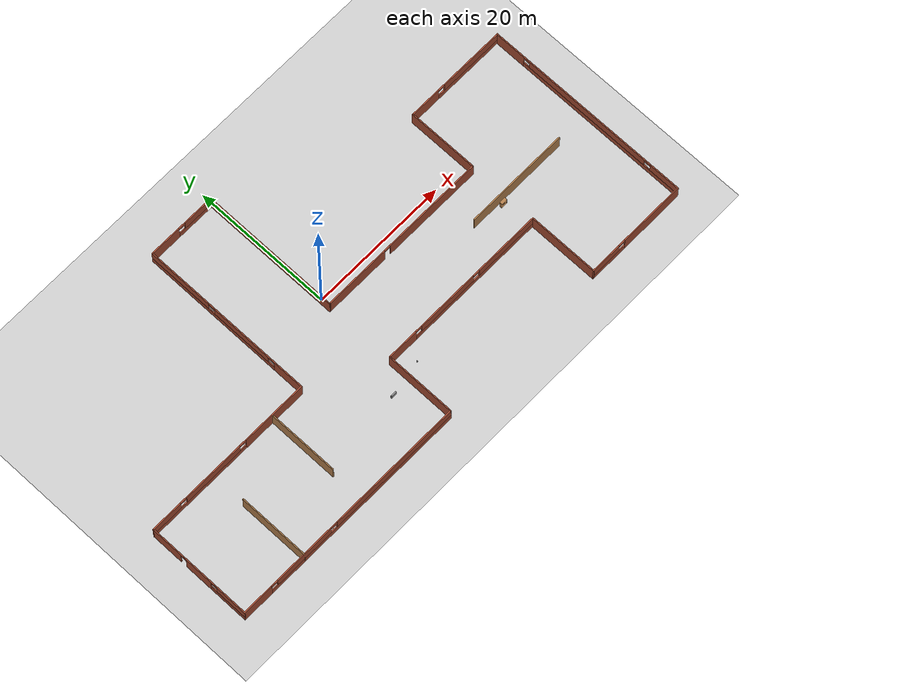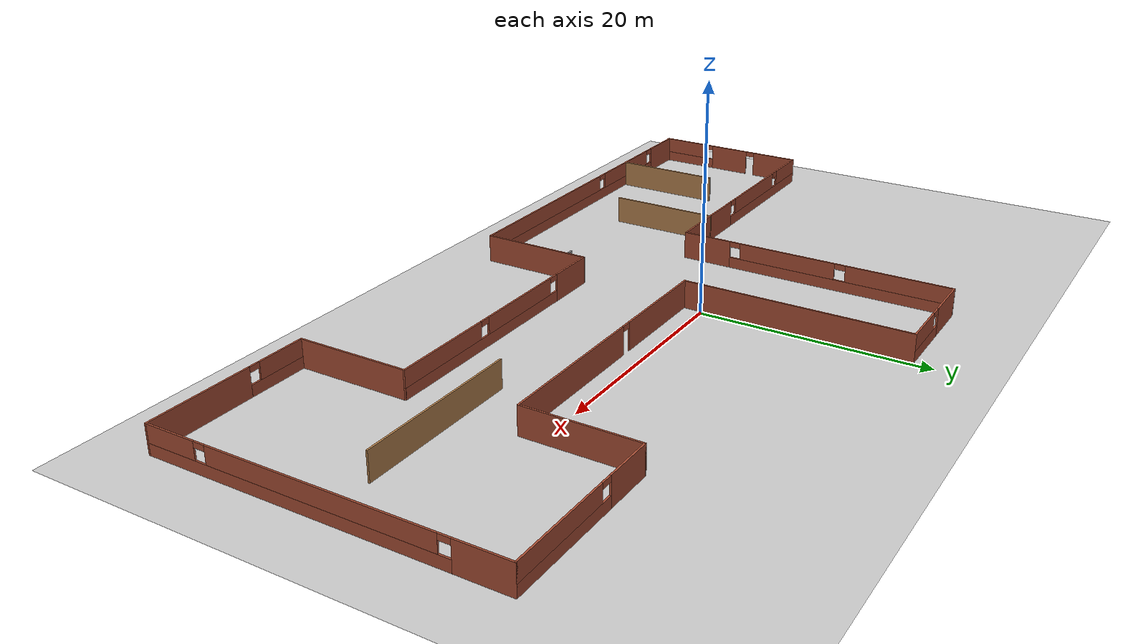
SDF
<sdf version="1.6">
 <world name="default">
  <model name="ground_plane">
   <static>1</static>
   <link name="link">
    <collision name="collision">
     <geometry><plane><normal>0 0 1</normal><size>100 100</size></plane></geometry>
     <surface>
      <contact><collide_bitmask>65535</collide_bitmask></contact>
      <friction><ode><mu>100</mu><mu2>50</mu2></ode></friction>
     </surface>
    </collision>
    <visual name="visual">
     <cast_shadows>0</cast_shadows>
     <geometry><plane><normal>0 0 1</normal><size>100 100</size></plane></geometry>
     <material>
      <script><uri>file://media/materials/scripts/gazebo.material</uri><name>Gazebo/Grey</name></script>
     </material>
    </visual>
   </link>
  </model>
  <model name="Building">
   <pose>2.1549 -1.76376 0 0 -0 0</pose>
   <link name="Wall_0">
    <pose>-12.5 7.5 0 0 -0 1.5708</pose>
    <visual name="Wall_0_Visual_0">
     <pose>-10.2875 0 1.25 0 -0 0</pose>
     <geometry><box><size>4.575 0.15 2.5</size></box></geometry>
     <material>
      <script><uri>file://media/materials/scripts/gazebo.material</uri><name>Gazebo/Bricks</name></script>
      <ambient>1 1 1 1</ambient>
     </material>
     <meta><layer>0</layer></meta>
    </visual>
    <collision name="Wall_0_Collision_0">
     <geometry><box><size>4.575 0.15 2.5</size></box></geometry>
     <pose>-10.2875 0 1.25 0 -0 0</pose>
    </collision>
    <visual name="Wall_0_Visual_1">
     <pose>2.2875 0 0.5 0 -0 0</pose>
     <geometry><box><size>20.575 0.15 1</size></box></geometry>
     <material>
      <script><uri>file://media/materials/scripts/gazebo.material</uri><name>Gazebo/Bricks</name></script>
      <ambient>1 1 1 1</ambient>
     </material>
     <meta><layer>0</layer></meta>
    </visual>
    <collision name="Wall_0_Collision_1">
     <geometry><box><size>20.575 0.15 1</size></box></geometry>
     <pose>2.2875 0 0.5 0 -0 0</pose>
    </collision>
    <visual name="Wall_0_Visual_2">
     <pose>-2.5 0 1.75 0 -0 0</pose>
     <geometry><box><size>9 0.15 1.5</size></box></geometry>
     <material>
      <script><uri>file://media/materials/scripts/gazebo.material</uri><name>Gazebo/Bricks</name></script>
      <ambient>1 1 1 1</ambient>
     </material>
     <meta><layer>0</layer></meta>
    </visual>
    <collision name="Wall_0_Collision_2">
     <geometry><box><size>9 0.15 1.5</size></box></geometry>
     <pose>-2.5 0 1.75 0 -0 0</pose>
    </collision>
    <visual name="Wall_0_Visual_3">
     <pose>7.7875 0 1.75 0 -0 0</pose>
     <geometry><box><size>9.575 0.15 1.5</size></box></geometry>
     <material>
      <script><uri>file://media/materials/scripts/gazebo.material</uri><name>Gazebo/Bricks</name></script>
      <ambient>1 1 1 1</ambient>
     </material>
     <meta><layer>0</layer></meta>
    </visual>
    <collision name="Wall_0_Collision_3">
     <geometry><box><size>9.575 0.15 1.5</size></box></geometry>
     <pose>7.7875 0 1.75 0 -0 0</pose>
    </collision>
    <visual name="Wall_0_Visual_4">
     <pose>-7.5 0 2.25 0 -0 0</pose>
     <geometry><box><size>1 0.15 0.5</size></box></geometry>
     <material>
      <script><uri>file://media/materials/scripts/gazebo.material</uri><name>Gazebo/Bricks</name></script>
      <ambient>1 1 1 1</ambient>
     </material>
     <meta><layer>0</layer></meta>
    </visual>
    <collision name="Wall_0_Collision_4">
     <geometry><box><size>1 0.15 0.5</size></box></geometry>
     <pose>-7.5 0 2.25 0 -0 0</pose>
    </collision>
    <visual name="Wall_0_Visual_5">
     <pose>2.5 0 2.25 0 -0 0</pose>
     <geometry><box><size>1 0.15 0.5</size></box></geometry>
     <material>
      <script><uri>file://media/materials/scripts/gazebo.material</uri><name>Gazebo/Bricks</name></script>
      <ambient>1 1 1 1</ambient>
     </material>
     <meta><layer>0</layer></meta>
    </visual>
    <collision name="Wall_0_Collision_5">
     <geometry><box><size>1 0.15 0.5</size></box></geometry>
     <pose>2.5 0 2.25 0 -0 0</pose>
    </collision>
   </link>
   <link name="Wall_11">
    <pose>30 10 0 0 -0 0</pose>
    <visual name="Wall_11_Visual_0">
     <pose>-5.2875 0 1.25 0 -0 0</pose>
     <geometry><box><size>4.575 0.15 2.5</size></box></geometry>
     <material>
      <script><uri>file://media/materials/scripts/gazebo.material</uri><name>Gazebo/Bricks</name></script>
      <ambient>1 1 1 1</ambient>
     </material>
     <meta><layer>0</layer></meta>
    </visual>
    <collision name="Wall_11_Collision_0">
     <geometry><box><size>4.575 0.15 2.5</size></box></geometry>
     <pose>-5.2875 0 1.25 0 -0 0</pose>
    </collision>
    <visual name="Wall_11_Visual_1">
     <pose>2.2875 0 0.5 0 -0 0</pose>
     <geometry><box><size>10.575 0.15 1</size></box></geometry>
     <material>
      <script><uri>file://media/materials/scripts/gazebo.material</uri><name>Gazebo/Bricks</name></script>
      <ambient>1 1 1 1</ambient>
     </material>
     <meta><layer>0</layer></meta>
    </visual>
    <collision name="Wall_11_Collision_1">
     <geometry><box><size>10.575 0.15 1</size></box></geometry>
     <pose>2.2875 0 0.5 0 -0 0</pose>
    </collision>
    <visual name="Wall_11_Visual_2">
     <pose>2.7875 0 1.75 0 -0 0</pose>
     <geometry><box><size>9.575 0.15 1.5</size></box></geometry>
     <material>
      <script><uri>file://media/materials/scripts/gazebo.material</uri><name>Gazebo/Bricks</name></script>
      <ambient>1 1 1 1</ambient>
     </material>
     <meta><layer>0</layer></meta>
    </visual>
    <collision name="Wall_11_Collision_2">
     <geometry><box><size>9.575 0.15 1.5</size></box></geometry>
     <pose>2.7875 0 1.75 0 -0 0</pose>
    </collision>
    <visual name="Wall_11_Visual_3">
     <pose>-2.5 0 2.25 0 -0 0</pose>
     <geometry><box><size>1 0.15 0.5</size></box></geometry>
     <material>
      <script><uri>file://media/materials/scripts/gazebo.material</uri><name>Gazebo/Bricks</name></script>
      <ambient>1 1 1 1</ambient>
     </material>
     <meta><layer>0</layer></meta>
    </visual>
    <collision name="Wall_11_Collision_3">
     <geometry><box><size>1 0.15 0.5</size></box></geometry>
     <pose>-2.5 0 2.25 0 -0 0</pose>
    </collision>
   </link>
   <link name="Wall_13">
    <pose>37.5 -4.925 0 0 0 -1.5708</pose>
    <visual name="Wall_13_Visual_0">
     <pose>-12.7125 0 1.25 0 -0 0</pose>
     <geometry><box><size>4.575 0.15 2.5</size></box></geometry>
     <material>
      <script><uri>file://media/materials/scripts/gazebo.material</uri><name>Gazebo/Bricks</name></script>
      <ambient>1 1 1 1</ambient>
     </material>
     <meta><layer>0</layer></meta>
    </visual>
    <collision name="Wall_13_Collision_0">
     <geometry><box><size>4.575 0.15 2.5</size></box></geometry>
     <pose>-12.7125 0 1.25 0 -0 0</pose>
    </collision>
    <visual name="Wall_13_Visual_1">
     <pose>2.2875 0 0.5 0 -0 0</pose>
     <geometry><box><size>25.425 0.15 1</size></box></geometry>
     <material>
      <script><uri>file://media/materials/scripts/gazebo.material</uri><name>Gazebo/Bricks</name></script>
      <ambient>1 1 1 1</ambient>
     </material>
     <meta><layer>0</layer></meta>
    </visual>
    <collision name="Wall_13_Collision_1">
     <geometry><box><size>25.425 0.15 1</size></box></geometry>
     <pose>2.2875 0 0.5 0 -0 0</pose>
    </collision>
    <visual name="Wall_13_Visual_2">
     <pose>0.075 0 1.75 0 -0 0</pose>
     <geometry><box><size>19 0.15 1.5</size></box></geometry>
     <material>
      <script><uri>file://media/materials/scripts/gazebo.material</uri><name>Gazebo/Bricks</name></script>
      <ambient>1 1 1 1</ambient>
     </material>
     <meta><layer>0</layer></meta>
    </visual>
    <collision name="Wall_13_Collision_2">
     <geometry><box><size>19 0.15 1.5</size></box></geometry>
     <pose>0.075 0 1.75 0 -0 0</pose>
    </collision>
    <visual name="Wall_13_Visual_3">
     <pose>12.7875 0 1.75 0 -0 0</pose>
     <geometry><box><size>4.425 0.15 1.5</size></box></geometry>
     <material>
      <script><uri>file://media/materials/scripts/gazebo.material</uri><name>Gazebo/Bricks</name></script>
      <ambient>1 1 1 1</ambient>
     </material>
     <meta><layer>0</layer></meta>
    </visual>
    <collision name="Wall_13_Collision_3">
     <geometry><box><size>4.425 0.15 1.5</size></box></geometry>
     <pose>12.7875 0 1.75 0 -0 0</pose>
    </collision>
    <visual name="Wall_13_Visual_4">
     <pose>-9.925 0 2.25 0 -0 0</pose>
     <geometry><box><size>1 0.15 0.5</size></box></geometry>
     <material>
      <script><uri>file://media/materials/scripts/gazebo.material</uri><name>Gazebo/Bricks</name></script>
      <ambient>1 1 1 1</ambient>
     </material>
     <meta><layer>0</layer></meta>
    </visual>
    <collision name="Wall_13_Collision_4">
     <geometry><box><size>1 0.15 0.5</size></box></geometry>
     <pose>-9.925 0 2.25 0 -0 0</pose>
    </collision>
    <visual name="Wall_13_Visual_5">
     <pose>10.075 0 2.25 0 -0 0</pose>
     <geometry><box><size>1 0.15 0.5</size></box></geometry>
     <material>
      <script><uri>file://media/materials/scripts/gazebo.material</uri><name>Gazebo/Bricks</name></script>
      <ambient>1 1 1 1</ambient>
     </material>
     <meta><layer>0</layer></meta>
    </visual>
    <collision name="Wall_13_Collision_5">
     <geometry><box><size>1 0.15 0.5</size></box></geometry>
     <pose>10.075 0 2.25 0 -0 0</pose>
    </collision>
   </link>
   <link name="Wall_15">
    <pose>30 -20 0 0 -0 3.14159</pose>
    <visual name="Wall_15_Visual_0">
     <pose>-2.7875 0 1.25 0 -0 0</pose>
     <geometry><box><size>9.575 0.15 2.5</size></box></geometry>
     <material>
      <script><uri>file://media/materials/scripts/gazebo.material</uri><name>Gazebo/Bricks</name></script>
      <ambient>1 1 1 1</ambient>
     </material>
     <meta><layer>0</layer></meta>
    </visual>
    <collision name="Wall_15_Collision_0">
     <geometry><box><size>9.575 0.15 2.5</size></box></geometry>
     <pose>-2.7875 0 1.25 0 -0 0</pose>
    </collision>
    <visual name="Wall_15_Visual_1">
     <pose>4.7875 0 0.5 0 -0 0</pose>
     <geometry><box><size>5.575 0.15 1</size></box></geometry>
     <material>
      <script><uri>file://media/materials/scripts/gazebo.material</uri><name>Gazebo/Bricks</name></script>
      <ambient>1 1 1 1</ambient>
     </material>
     <meta><layer>0</layer></meta>
    </visual>
    <collision name="Wall_15_Collision_1">
     <geometry><box><size>5.575 0.15 1</size></box></geometry>
     <pose>4.7875 0 0.5 0 -0 0</pose>
    </collision>
    <visual name="Wall_15_Visual_2">
     <pose>5.2875 0 1.75 0 -0 0</pose>
     <geometry><box><size>4.575 0.15 1.5</size></box></geometry>
     <material>
      <script><uri>file://media/materials/scripts/gazebo.material</uri><name>Gazebo/Bricks</name></script>
      <ambient>1 1 1 1</ambient>
     </material>
     <meta><layer>0</layer></meta>
    </visual>
    <collision name="Wall_15_Collision_2">
     <geometry><box><size>4.575 0.15 1.5</size></box></geometry>
     <pose>5.2875 0 1.75 0 -0 0</pose>
    </collision>
    <visual name="Wall_15_Visual_3">
     <pose>2.5 0 2.25 0 -0 0</pose>
     <geometry><box><size>1 0.15 0.5</size></box></geometry>
     <material>
      <script><uri>file://media/materials/scripts/gazebo.material</uri><name>Gazebo/Bricks</name></script>
      <ambient>1 1 1 1</ambient>
     </material>
     <meta><layer>0</layer></meta>
    </visual>
    <collision name="Wall_15_Collision_3">
     <geometry><box><size>1 0.15 0.5</size></box></geometry>
     <pose>2.5 0 2.25 0 -0 0</pose>
    </collision>
   </link>
   <link name="Wall_17">
    <collision name="Wall_17_Collision">
     <geometry><box><size>10.15 0.15 2.5</size></box></geometry>
     <pose>0 0 1.25 0 -0 0</pose>
    </collision>
    <visual name="Wall_17_Visual">
     <pose>0 0 1.25 0 -0 0</pose>
     <geometry><box><size>10.15 0.15 2.5</size></box></geometry>
     <material>
      <script><uri>file://media/materials/scripts/gazebo.material</uri><name>Gazebo/Bricks</name></script>
      <ambient>1 1 1 1</ambient>
     </material>
     <meta><layer>0</layer></meta>
    </visual>
    <pose>22.5 -15 0 0 -0 1.5708</pose>
   </link>
   <link name="Wall_19">
    <pose>-25 -5 0 0 -0 3.14159</pose>
    <visual name="Wall_19_Visual_0">
     <pose>-7.7875 0 1.25 0 -0 0</pose>
     <geometry><box><size>9.575 0.15 2.5</size></box></geometry>
     <material>
      <script><uri>file://media/materials/scripts/gazebo.material</uri><name>Gazebo/Bricks</name></script>
      <ambient>1 1 1 1</ambient>
     </material>
     <meta><layer>0</layer></meta>
    </visual>
    <collision name="Wall_19_Collision_0">
     <geometry><box><size>9.575 0.15 2.5</size></box></geometry>
     <pose>-7.7875 0 1.25 0 -0 0</pose>
    </collision>
    <visual name="Wall_19_Visual_1">
     <pose>4.7875 0 0.5 0 -0 0</pose>
     <geometry><box><size>15.575 0.15 1</size></box></geometry>
     <material>
      <script><uri>file://media/materials/scripts/gazebo.material</uri><name>Gazebo/Bricks</name></script>
      <ambient>1 1 1 1</ambient>
     </material>
     <meta><layer>0</layer></meta>
    </visual>
    <collision name="Wall_19_Collision_1">
     <geometry><box><size>15.575 0.15 1</size></box></geometry>
     <pose>4.7875 0 0.5 0 -0 0</pose>
    </collision>
    <visual name="Wall_19_Visual_2">
     <pose>2.5 0 1.75 0 -0 0</pose>
     <geometry><box><size>9 0.15 1.5</size></box></geometry>
     <material>
      <script><uri>file://media/materials/scripts/gazebo.material</uri><name>Gazebo/Bricks</name></script>
      <ambient>1 1 1 1</ambient>
     </material>
     <meta><layer>0</layer></meta>
    </visual>
    <collision name="Wall_19_Collision_2">
     <geometry><box><size>9 0.15 1.5</size></box></geometry>
     <pose>2.5 0 1.75 0 -0 0</pose>
    </collision>
    <visual name="Wall_19_Visual_3">
     <pose>10.2875 0 1.75 0 -0 0</pose>
     <geometry><box><size>4.575 0.15 1.5</size></box></geometry>
     <material>
      <script><uri>file://media/materials/scripts/gazebo.material</uri><name>Gazebo/Bricks</name></script>
      <ambient>1 1 1 1</ambient>
     </material>
     <meta><layer>0</layer></meta>
    </visual>
    <collision name="Wall_19_Collision_3">
     <geometry><box><size>4.575 0.15 1.5</size></box></geometry>
     <pose>10.2875 0 1.75 0 -0 0</pose>
    </collision>
    <visual name="Wall_19_Visual_4">
     <pose>-2.5 0 2.25 0 -0 0</pose>
     <geometry><box><size>1 0.15 0.5</size></box></geometry>
     <material>
      <script><uri>file://media/materials/scripts/gazebo.material</uri><name>Gazebo/Bricks</name></script>
      <ambient>1 1 1 1</ambient>
     </material>
     <meta><layer>0</layer></meta>
    </visual>
    <collision name="Wall_19_Collision_4">
     <geometry><box><size>1 0.15 0.5</size></box></geometry>
     <pose>-2.5 0 2.25 0 -0 0</pose>
    </collision>
    <visual name="Wall_19_Visual_5">
     <pose>7.5 0 2.25 0 -0 0</pose>
     <geometry><box><size>1 0.15 0.5</size></box></geometry>
     <material>
      <script><uri>file://media/materials/scripts/gazebo.material</uri><name>Gazebo/Bricks</name></script>
      <ambient>1 1 1 1</ambient>
     </material>
     <meta><layer>0</layer></meta>
    </visual>
    <collision name="Wall_19_Collision_5">
     <geometry><box><size>1 0.15 0.5</size></box></geometry>
     <pose>7.5 0 2.25 0 -0 0</pose>
    </collision>
   </link>
   <link name="Wall_2">
    <pose>-7.5 20 0 0 -0 0</pose>
    <visual name="Wall_2_Visual_0">
     <pose>-2.7875 0 1.25 0 -0 0</pose>
     <geometry><box><size>4.575 0.15 2.5</size></box></geometry>
     <material>
      <script><uri>file://media/materials/scripts/gazebo.material</uri><name>Gazebo/Bricks</name></script>
      <ambient>1 1 1 1</ambient>
     </material>
     <meta><layer>0</layer></meta>
    </visual>
    <collision name="Wall_2_Collision_0">
     <geometry><box><size>4.575 0.15 2.5</size></box></geometry>
     <pose>-2.7875 0 1.25 0 -0 0</pose>
    </collision>
    <visual name="Wall_2_Visual_1">
     <pose>2.2875 0 0.5 0 -0 0</pose>
     <geometry><box><size>5.575 0.15 1</size></box></geometry>
     <material>
      <script><uri>file://media/materials/scripts/gazebo.material</uri><name>Gazebo/Bricks</name></script>
      <ambient>1 1 1 1</ambient>
     </material>
     <meta><layer>0</layer></meta>
    </visual>
    <collision name="Wall_2_Collision_1">
     <geometry><box><size>5.575 0.15 1</size></box></geometry>
     <pose>2.2875 0 0.5 0 -0 0</pose>
    </collision>
    <visual name="Wall_2_Visual_2">
     <pose>2.7875 0 1.75 0 -0 0</pose>
     <geometry><box><size>4.575 0.15 1.5</size></box></geometry>
     <material>
      <script><uri>file://media/materials/scripts/gazebo.material</uri><name>Gazebo/Bricks</name></script>
      <ambient>1 1 1 1</ambient>
     </material>
     <meta><layer>0</layer></meta>
    </visual>
    <collision name="Wall_2_Collision_2">
     <geometry><box><size>4.575 0.15 1.5</size></box></geometry>
     <pose>2.7875 0 1.75 0 -0 0</pose>
    </collision>
    <visual name="Wall_2_Visual_3">
     <pose>0 0 2.25 0 -0 0</pose>
     <geometry><box><size>1 0.15 0.5</size></box></geometry>
     <material>
      <script><uri>file://media/materials/scripts/gazebo.material</uri><name>Gazebo/Bricks</name></script>
      <ambient>1 1 1 1</ambient>
     </material>
     <meta><layer>0</layer></meta>
    </visual>
    <collision name="Wall_2_Collision_3">
     <geometry><box><size>1 0.15 0.5</size></box></geometry>
     <pose>0 0 2.25 0 -0 0</pose>
    </collision>
   </link>
   <link name="Wall_21">
    <pose>-37.5 -12.5 0 0 0 -1.5708</pose>
    <visual name="Wall_21_Visual_0">
     <pose>-5.2625 0 1.25 0 -0 0</pose>
     <geometry><box><size>4.625 0.15 2.5</size></box></geometry>
     <material>
      <script><uri>file://media/materials/scripts/gazebo.material</uri><name>Gazebo/Bricks</name></script>
      <ambient>1 1 1 1</ambient>
     </material>
     <meta><layer>0</layer></meta>
    </visual>
    <collision name="Wall_21_Collision_0">
     <geometry><box><size>4.625 0.15 2.5</size></box></geometry>
     <pose>-5.2625 0 1.25 0 -0 0</pose>
    </collision>
    <visual name="Wall_21_Visual_1">
     <pose>-0.025 0 1.25 0 -0 0</pose>
     <geometry><box><size>4.05 0.15 2.5</size></box></geometry>
     <material>
      <script><uri>file://media/materials/scripts/gazebo.material</uri><name>Gazebo/Bricks</name></script>
      <ambient>1 1 1 1</ambient>
     </material>
     <meta><layer>0</layer></meta>
    </visual>
    <collision name="Wall_21_Collision_1">
     <geometry><box><size>4.05 0.15 2.5</size></box></geometry>
     <pose>-0.025 0 1.25 0 -0 0</pose>
    </collision>
    <visual name="Wall_21_Visual_2">
     <pose>4.7875 0 0.5 0 -0 0</pose>
     <geometry><box><size>5.575 0.15 1</size></box></geometry>
     <material>
      <script><uri>file://media/materials/scripts/gazebo.material</uri><name>Gazebo/Bricks</name></script>
      <ambient>1 1 1 1</ambient>
     </material>
     <meta><layer>0</layer></meta>
    </visual>
    <collision name="Wall_21_Collision_2">
     <geometry><box><size>5.575 0.15 1</size></box></geometry>
     <pose>4.7875 0 0.5 0 -0 0</pose>
    </collision>
    <visual name="Wall_21_Visual_3">
     <pose>5.2875 0 1.75 0 -0 0</pose>
     <geometry><box><size>4.575 0.15 1.5</size></box></geometry>
     <material>
      <script><uri>file://media/materials/scripts/gazebo.material</uri><name>Gazebo/Bricks</name></script>
      <ambient>1 1 1 1</ambient>
     </material>
     <meta><layer>0</layer></meta>
    </visual>
    <collision name="Wall_21_Collision_3">
     <geometry><box><size>4.575 0.15 1.5</size></box></geometry>
     <pose>5.2875 0 1.75 0 -0 0</pose>
    </collision>
    <visual name="Wall_21_Visual_4">
     <pose>-2.5 0 2.25 0 -0 0</pose>
     <geometry><box><size>0.9 0.15 0.5</size></box></geometry>
     <material>
      <script><uri>file://media/materials/scripts/gazebo.material</uri><name>Gazebo/Bricks</name></script>
      <ambient>1 1 1 1</ambient>
     </material>
     <meta><layer>0</layer></meta>
    </visual>
    <collision name="Wall_21_Collision_4">
     <geometry><box><size>0.9 0.15 0.5</size></box></geometry>
     <pose>-2.5 0 2.25 0 -0 0</pose>
    </collision>
    <visual name="Wall_21_Visual_5">
     <pose>2.5 0 2.25 0 -0 0</pose>
     <geometry><box><size>1 0.15 0.5</size></box></geometry>
     <material>
      <script><uri>file://media/materials/scripts/gazebo.material</uri><name>Gazebo/Bricks</name></script>
      <ambient>1 1 1 1</ambient>
     </material>
     <meta><layer>0</layer></meta>
    </visual>
    <collision name="Wall_21_Collision_5">
     <geometry><box><size>1 0.15 0.5</size></box></geometry>
     <pose>2.5 0 2.25 0 -0 0</pose>
    </collision>
   </link>
   <link name="Wall_23">
    <pose>-20 -20 0 0 -0 0</pose>
    <visual name="Wall_23_Visual_0">
     <pose>-15.2875 0 1.25 0 -0 0</pose>
     <geometry><box><size>4.575 0.15 2.5</size></box></geometry>
     <material>
      <script><uri>file://media/materials/scripts/gazebo.material</uri><name>Gazebo/Bricks</name></script>
      <ambient>1 1 1 1</ambient>
     </material>
     <meta><layer>0</layer></meta>
    </visual>
    <collision name="Wall_23_Collision_0">
     <geometry><box><size>4.575 0.15 2.5</size></box></geometry>
     <pose>-15.2875 0 1.25 0 -0 0</pose>
    </collision>
    <visual name="Wall_23_Visual_1">
     <pose>2.2875 0 0.5 0 -0 0</pose>
     <geometry><box><size>30.575 0.15 1</size></box></geometry>
     <material>
      <script><uri>file://media/materials/scripts/gazebo.material</uri><name>Gazebo/Bricks</name></script>
      <ambient>1 1 1 1</ambient>
     </material>
     <meta><layer>0</layer></meta>
    </visual>
    <collision name="Wall_23_Collision_1">
     <geometry><box><size>30.575 0.15 1</size></box></geometry>
     <pose>2.2875 0 0.5 0 -0 0</pose>
    </collision>
    <visual name="Wall_23_Visual_2">
     <pose>-7.5 0 1.75 0 -0 0</pose>
     <geometry><box><size>9 0.15 1.5</size></box></geometry>
     <material>
      <script><uri>file://media/materials/scripts/gazebo.material</uri><name>Gazebo/Bricks</name></script>
      <ambient>1 1 1 1</ambient>
     </material>
     <meta><layer>0</layer></meta>
    </visual>
    <collision name="Wall_23_Collision_2">
     <geometry><box><size>9 0.15 1.5</size></box></geometry>
     <pose>-7.5 0 1.75 0 -0 0</pose>
    </collision>
    <visual name="Wall_23_Visual_3">
     <pose>7.7875 0 1.75 0 -0 0</pose>
     <geometry><box><size>19.575 0.15 1.5</size></box></geometry>
     <material>
      <script><uri>file://media/materials/scripts/gazebo.material</uri><name>Gazebo/Bricks</name></script>
      <ambient>1 1 1 1</ambient>
     </material>
     <meta><layer>0</layer></meta>
    </visual>
    <collision name="Wall_23_Collision_3">
     <geometry><box><size>19.575 0.15 1.5</size></box></geometry>
     <pose>7.7875 0 1.75 0 -0 0</pose>
    </collision>
    <visual name="Wall_23_Visual_4">
     <pose>-12.5 0 2.25 0 -0 0</pose>
     <geometry><box><size>1 0.15 0.5</size></box></geometry>
     <material>
      <script><uri>file://media/materials/scripts/gazebo.material</uri><name>Gazebo/Bricks</name></script>
      <ambient>1 1 1 1</ambient>
     </material>
     <meta><layer>0</layer></meta>
    </visual>
    <collision name="Wall_23_Collision_4">
     <geometry><box><size>1 0.15 0.5</size></box></geometry>
     <pose>-12.5 0 2.25 0 -0 0</pose>
    </collision>
    <visual name="Wall_23_Visual_5">
     <pose>-2.5 0 2.25 0 -0 0</pose>
     <geometry><box><size>1 0.15 0.5</size></box></geometry>
     <material>
      <script><uri>file://media/materials/scripts/gazebo.material</uri><name>Gazebo/Bricks</name></script>
      <ambient>1 1 1 1</ambient>
     </material>
     <meta><layer>0</layer></meta>
    </visual>
    <collision name="Wall_23_Collision_5">
     <geometry><box><size>1 0.15 0.5</size></box></geometry>
     <pose>-2.5 0 2.25 0 -0 0</pose>
    </collision>
   </link>
   <link name="Wall_24">
    <collision name="Wall_24_Collision">
     <geometry><box><size>10.15 0.15 2.5</size></box></geometry>
     <pose>0 0 1.25 0 -0 0</pose>
    </collision>
    <visual name="Wall_24_Visual">
     <pose>0 0 1.25 0 -0 0</pose>
     <geometry><box><size>10.15 0.15 2.5</size></box></geometry>
     <material>
      <script><uri>file://media/materials/scripts/gazebo.material</uri><name>Gazebo/Bricks</name></script>
      <ambient>1 1 1 1</ambient>
     </material>
     <meta><layer>0</layer></meta>
    </visual>
    <pose>-2.5 -15 0 0 -0 1.5708</pose>
   </link>
   <link name="Wall_26">
    <pose>10 -10 0 0 -0 0</pose>
    <visual name="Wall_26_Visual_0">
     <pose>-10.2875 0 1.25 0 -0 0</pose>
     <geometry><box><size>4.575 0.15 2.5</size></box></geometry>
     <material>
      <script><uri>file://media/materials/scripts/gazebo.material</uri><name>Gazebo/Bricks</name></script>
      <ambient>1 1 1 1</ambient>
     </material>
     <meta><layer>0</layer></meta>
    </visual>
    <collision name="Wall_26_Collision_0">
     <geometry><box><size>4.575 0.15 2.5</size></box></geometry>
     <pose>-10.2875 0 1.25 0 -0 0</pose>
    </collision>
    <visual name="Wall_26_Visual_1">
     <pose>2.2875 0 0.5 0 -0 0</pose>
     <geometry><box><size>20.575 0.15 1</size></box></geometry>
     <material>
      <script><uri>file://media/materials/scripts/gazebo.material</uri><name>Gazebo/Bricks</name></script>
      <ambient>1 1 1 1</ambient>
     </material>
     <meta><layer>0</layer></meta>
    </visual>
    <collision name="Wall_26_Collision_1">
     <geometry><box><size>20.575 0.15 1</size></box></geometry>
     <pose>2.2875 0 0.5 0 -0 0</pose>
    </collision>
    <visual name="Wall_26_Visual_2">
     <pose>-2.5 0 1.75 0 -0 0</pose>
     <geometry><box><size>9 0.15 1.5</size></box></geometry>
     <material>
      <script><uri>file://media/materials/scripts/gazebo.material</uri><name>Gazebo/Bricks</name></script>
      <ambient>1 1 1 1</ambient>
     </material>
     <meta><layer>0</layer></meta>
    </visual>
    <collision name="Wall_26_Collision_2">
     <geometry><box><size>9 0.15 1.5</size></box></geometry>
     <pose>-2.5 0 1.75 0 -0 0</pose>
    </collision>
    <visual name="Wall_26_Visual_3">
     <pose>7.7875 0 1.75 0 -0 0</pose>
     <geometry><box><size>9.575 0.15 1.5</size></box></geometry>
     <material>
      <script><uri>file://media/materials/scripts/gazebo.material</uri><name>Gazebo/Bricks</name></script>
      <ambient>1 1 1 1</ambient>
     </material>
     <meta><layer>0</layer></meta>
    </visual>
    <collision name="Wall_26_Collision_3">
     <geometry><box><size>9.575 0.15 1.5</size></box></geometry>
     <pose>7.7875 0 1.75 0 -0 0</pose>
    </collision>
    <visual name="Wall_26_Visual_4">
     <pose>-7.5 0 2.25 0 -0 0</pose>
     <geometry><box><size>1 0.15 0.5</size></box></geometry>
     <material>
      <script><uri>file://media/materials/scripts/gazebo.material</uri><name>Gazebo/Bricks</name></script>
      <ambient>1 1 1 1</ambient>
     </material>
     <meta><layer>0</layer></meta>
    </visual>
    <collision name="Wall_26_Collision_4">
     <geometry><box><size>1 0.15 0.5</size></box></geometry>
     <pose>-7.5 0 2.25 0 -0 0</pose>
    </collision>
    <visual name="Wall_26_Visual_5">
     <pose>2.5 0 2.25 0 -0 0</pose>
     <geometry><box><size>1 0.15 0.5</size></box></geometry>
     <material>
      <script><uri>file://media/materials/scripts/gazebo.material</uri><name>Gazebo/Bricks</name></script>
      <ambient>1 1 1 1</ambient>
     </material>
     <meta><layer>0</layer></meta>
    </visual>
    <collision name="Wall_26_Collision_5">
     <geometry><box><size>1 0.15 0.5</size></box></geometry>
     <pose>2.5 0 2.25 0 -0 0</pose>
    </collision>
   </link>
   <link name="Wall_28">
    <collision name="Wall_28_Collision">
     <geometry><box><size>15.15 0.15 2.5</size></box></geometry>
     <pose>0 0 1.25 0 -0 0</pose>
    </collision>
    <visual name="Wall_28_Visual">
     <pose>0 0 1.25 0 -0 0</pose>
     <geometry><box><size>15.15 0.15 2.5</size></box></geometry>
     <material>
      <script><uri>file://media/materials/scripts/gazebo.material</uri><name>Gazebo/Wood</name></script>
      <ambient>1 1 1 1</ambient>
     </material>
     <meta><layer>0</layer></meta>
    </visual>
    <pose>25 -5 0 0 -0 0</pose>
   </link>
   <link name="Wall_30">
    <collision name="Wall_30_Collision">
     <geometry><box><size>10.15 0.15 2.5</size></box></geometry>
     <pose>0 0 1.25 0 -0 0</pose>
    </collision>
    <visual name="Wall_30_Visual">
     <pose>0 0 1.25 0 -0 0</pose>
     <geometry><box><size>10.15 0.15 2.5</size></box></geometry>
     <material>
      <script><uri>file://media/materials/scripts/gazebo.material</uri><name>Gazebo/Wood</name></script>
      <ambient>1 1 1 1</ambient>
     </material>
     <meta><layer>0</layer></meta>
    </visual>
    <pose>-27.5 -15 0 0 0 -1.5708</pose>
   </link>
   <link name="Wall_32">
    <collision name="Wall_32_Collision">
     <geometry><box><size>10.15 0.15 2.5</size></box></geometry>
     <pose>0 0 1.25 0 -0 0</pose>
    </collision>
    <visual name="Wall_32_Visual">
     <pose>0 0 1.25 0 -0 0</pose>
     <geometry><box><size>10.15 0.15 2.5</size></box></geometry>
     <material>
      <script><uri>file://media/materials/scripts/gazebo.material</uri><name>Gazebo/Wood</name></script>
      <ambient>1 1 1 1</ambient>
     </material>
     <meta><layer>0</layer></meta>
    </visual>
    <pose>-17.5 -10 0 0 0 -1.5708</pose>
   </link>
   <link name="Wall_4">
    <collision name="Wall_4_Collision">
     <geometry><box><size>20.15 0.15 2.5</size></box></geometry>
     <pose>0 0 1.25 0 -0 0</pose>
    </collision>
    <visual name="Wall_4_Visual">
     <pose>0 0 1.25 0 -0 0</pose>
     <geometry><box><size>20.15 0.15 2.5</size></box></geometry>
     <material>
      <script><uri>file://media/materials/scripts/gazebo.material</uri><name>Gazebo/Bricks</name></script>
      <ambient>1 1 1 1</ambient>
     </material>
     <meta><layer>0</layer></meta>
    </visual>
    <pose>-2.5 10 0 0 0 -1.5708</pose>
   </link>
   <link name="Wall_6">
    <pose>10 0 0 0 -0 0</pose>
    <visual name="Wall_6_Visual_0">
     <pose>-7.7625 0 1.25 0 -0 0</pose>
     <geometry><box><size>9.625 0.15 2.5</size></box></geometry>
     <material>
      <script><uri>file://media/materials/scripts/gazebo.material</uri><name>Gazebo/Bricks</name></script>
      <ambient>1 1 1 1</ambient>
     </material>
     <meta><layer>0</layer></meta>
    </visual>
    <collision name="Wall_6_Collision_0">
     <geometry><box><size>9.625 0.15 2.5</size></box></geometry>
     <pose>-7.7625 0 1.25 0 -0 0</pose>
    </collision>
    <visual name="Wall_6_Visual_1">
     <pose>5.2625 0 1.25 0 -0 0</pose>
     <geometry><box><size>14.625 0.15 2.5</size></box></geometry>
     <material>
      <script><uri>file://media/materials/scripts/gazebo.material</uri><name>Gazebo/Bricks</name></script>
      <ambient>1 1 1 1</ambient>
     </material>
     <meta><layer>0</layer></meta>
    </visual>
    <collision name="Wall_6_Collision_1">
     <geometry><box><size>14.625 0.15 2.5</size></box></geometry>
     <pose>5.2625 0 1.25 0 -0 0</pose>
    </collision>
    <visual name="Wall_6_Visual_2">
     <pose>-2.5 0 2.25 0 -0 0</pose>
     <geometry><box><size>0.9 0.15 0.5</size></box></geometry>
     <material>
      <script><uri>file://media/materials/scripts/gazebo.material</uri><name>Gazebo/Bricks</name></script>
      <ambient>1 1 1 1</ambient>
     </material>
     <meta><layer>0</layer></meta>
    </visual>
    <collision name="Wall_6_Collision_2">
     <geometry><box><size>0.9 0.15 0.5</size></box></geometry>
     <pose>-2.5 0 2.25 0 -0 0</pose>
    </collision>
   </link>
   <link name="Wall_9">
    <collision name="Wall_9_Collision">
     <geometry><box><size>10.15 0.15 2.5</size></box></geometry>
     <pose>0 0 1.25 0 -0 0</pose>
    </collision>
    <visual name="Wall_9_Visual">
     <pose>0 0 1.25 0 -0 0</pose>
     <geometry><box><size>10.15 0.15 2.5</size></box></geometry>
     <material>
      <script><uri>file://media/materials/scripts/gazebo.material</uri><name>Gazebo/Bricks</name></script>
      <ambient>1 1 1 1</ambient>
     </material>
     <meta><layer>0</layer></meta>
    </visual>
    <pose>22.5 5 0 0 -0 1.5708</pose>
   </link>
   <link name="Window_9">
    <collision name="Window_9_Collision">
     <geometry><box><size>0.8 0.17 0.8</size></box></geometry>
     <pose>0 0 0.4 0 -0 0</pose>
    </collision>
    <visual name="Window_9_Visual">
     <pose>0 0 0.4 0 -0 0</pose>
     <geometry><box><size>0.8 0.17 0.8</size></box></geometry>
     <material>
      <script><uri>file://media/materials/scripts/gazebo.material</uri><name>Gazebo/Grey</name></script>
     </material>
    </visual>
    <pose>-5.28751 -13.263 0.5 0 -0 0</pose>
   </link>
   <static>1</static>
  </model>
  <model name="bookshelf">
   <static>1</static>
   <link name="link">
    <inertial><mass>1</mass></inertial>
    <collision name="back">
     <pose>0 0.005 0.6 0 -0 0</pose>
     <geometry><box><size>0.9 0.01 1.2</size></box></geometry>
    </collision>
    <visual name="visual1">
     <pose>0 0.005 0.6 0 -0 0</pose>
     <geometry><box><size>0.9 0.01 1.2</size></box></geometry>
     <material>
      <script><uri>file://media/materials/scripts/gazebo.material</uri><name>Gazebo/Wood</name></script>
     </material>
    </visual>
    <collision name="left_side">
     <pose>0.45 -0.195 0.6 0 -0 0</pose>
     <geometry><box><size>0.02 0.4 1.2</size></box></geometry>
    </collision>
    <visual name="visual2">
     <pose>0.45 -0.195 0.6 0 -0 0</pose>
     <geometry><box><size>0.02 0.4 1.2</size></box></geometry>
     <material>
      <script><uri>file://media/materials/scripts/gazebo.material</uri><name>Gazebo/Wood</name></script>
     </material>
    </visual>
    <collision name="right_side">
     <pose>-0.45 -0.195 0.6 0 -0 0</pose>
     <geometry><box><size>0.02 0.4 1.2</size></box></geometry>
    </collision>
    <visual name="visual3">
     <pose>-0.45 -0.195 0.6 0 -0 0</pose>
     <geometry><box><size>0.02 0.4 1.2</size></box></geometry>
     <material>
      <script><uri>file://media/materials/scripts/gazebo.material</uri><name>Gazebo/Wood</name></script>
     </material>
    </visual>
    <collision name="bottom">
     <pose>0 -0.195 0.03 0 -0 0</pose>
     <geometry><box><size>0.88 0.4 0.06</size></box></geometry>
    </collision>
    <visual name="visual4">
     <pose>0 -0.195 0.03 0 -0 0</pose>
     <geometry><box><size>0.88 0.4 0.06</size></box></geometry>
     <material>
      <script><uri>file://media/materials/scripts/gazebo.material</uri><name>Gazebo/Wood</name></script>
     </material>
    </visual>
    <collision name="top">
     <pose>0 -0.195 1.19 0 -0 0</pose>
     <geometry><box><size>0.88 0.4 0.02</size></box></geometry>
    </collision>
    <visual name="visual5">
     <pose>0 -0.195 1.19 0 -0 0</pose>
     <geometry><box><size>0.88 0.4 0.02</size></box></geometry>
     <material>
      <script><uri>file://media/materials/scripts/gazebo.material</uri><name>Gazebo/Wood</name></script>
     </material>
    </visual>
    <collision name="low_shelf">
     <pose>0 -0.195 0.43 0 -0 0</pose>
     <geometry><box><size>0.88 0.4 0.02</size></box></geometry>
    </collision>
    <visual name="visual6">
     <pose>0 -0.195 0.43 0 -0 0</pose>
     <geometry><box><size>0.88 0.4 0.02</size></box></geometry>
     <material>
      <script><uri>file://media/materials/scripts/gazebo.material</uri><name>Gazebo/Wood</name></script>
     </material>
    </visual>
    <collision name="high_shelf">
     <pose>0 -0.195 0.8 0 -0 0</pose>
     <geometry><box><size>0.88 0.4 0.02</size></box></geometry>
    </collision>
    <visual name="visual7">
     <pose>0 -0.195 0.8 0 -0 0</pose>
     <geometry><box><size>0.88 0.4 0.02</size></box></geometry>
     <material>
      <script><uri>file://media/materials/scripts/gazebo.material</uri><name>Gazebo/Wood</name></script>
     </material>
    </visual>
   </link>
   <pose>24.2757 -7.05939 0 0 -0 0</pose>
  </model>
  <model name="my_ball">
   <link name="link_0">
    <inertial>
     <mass>1</mass>
     <inertia><ixx>0.1</ixx><ixy>0</ixy><ixz>0</ixz><iyy>0.1</iyy><iyz>0</iyz><izz>0.1</izz></inertia>
    </inertial>
    <visual name="visual">
     <geometry><sphere><radius>0.1</radius></sphere></geometry>
     <material>
      <lighting>1</lighting>
      <script><uri>file://media/materials/scripts/gazebo.material</uri><name>Gazebo/Grey</name></script>
      <shader type="pixel"><normal_map>__default__</normal_map></shader>
      <ambient>1 1 1 1</ambient>
      <diffuse>1 1 1 1</diffuse>
      <specular>1 1 1 1</specular>
      <emissive>1 1 1 1</emissive>
     </material>
    </visual>
    <collision name="collision">
     <geometry><sphere><radius>0.1</radius></sphere></geometry>
     <surface>
      <friction>
       <ode><mu>1</mu><mu2>1</mu2><fdir1>0 0 0</fdir1><slip1>0</slip1><slip2>0</slip2></ode>
       <torsional>
        <coefficient>1</coefficient>
        <patch_radius>0</patch_radius>
        <surface_radius>0</surface_radius>
        <use_patch_radius>1</use_patch_radius>
        <ode><slip>0</slip></ode>
       </torsional>
      </friction>
      <bounce><restitution_coefficient>0</restitution_coefficient><threshold>1e+06</threshold></bounce>
      <contact>
       <collide_without_contact>0</collide_without_contact>
       <collide_without_contact_bitmask>1</collide_without_contact_bitmask>
       <collide_bitmask>1</collide_bitmask>
       <ode>
        <soft_cfm>0</soft_cfm>
        <soft_erp>0.2</soft_erp>
        <kp>1e+13</kp>
        <kd>1</kd>
        <max_vel>0.01</max_vel>
        <min_depth>0</min_depth>
       </ode>
       <bullet>
        <split_impulse>1</split_impulse>
        <split_impulse_penetration_threshold>-0.01</split_impulse_penetration_threshold>
        <soft_cfm>0</soft_cfm>
        <soft_erp>0.2</soft_erp>
        <kp>1e+13</kp>
        <kd>1</kd>
       </bullet>
      </contact>
     </surface>
    </collision>
   </link>
   <static>0</static>
   <pose>2.1909 -13.8571 0.1 0 -0 0</pose>
  </model>
 </world>
</sdf>
